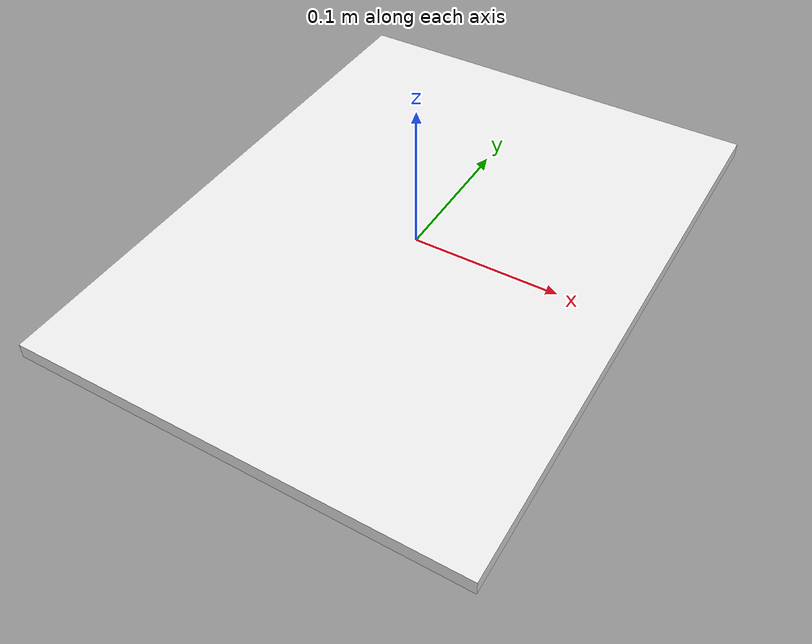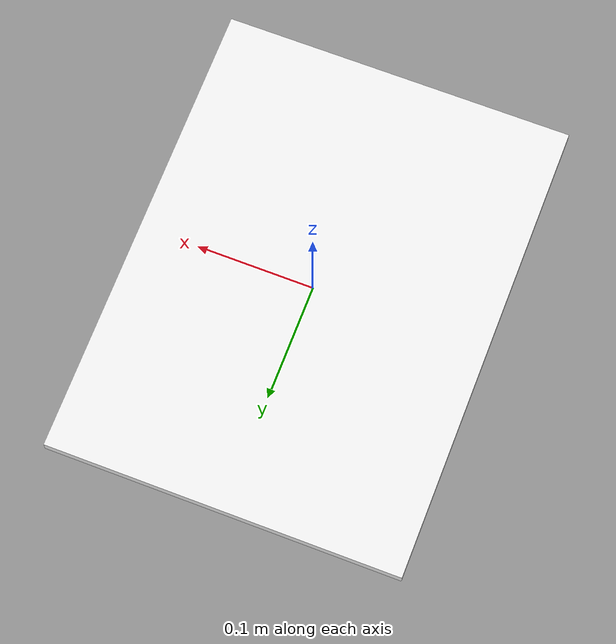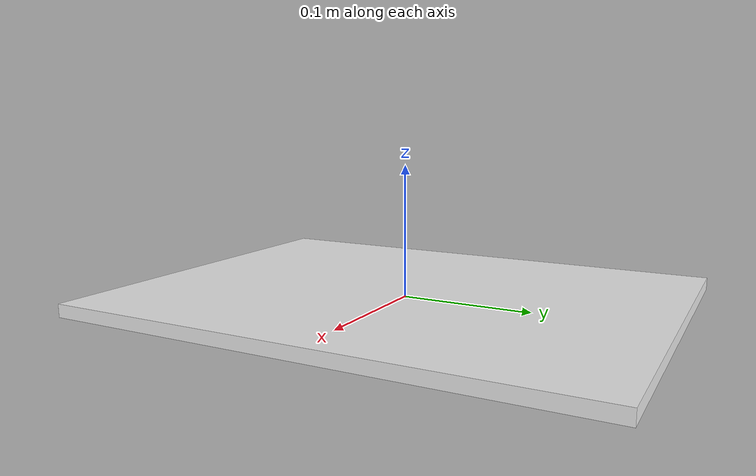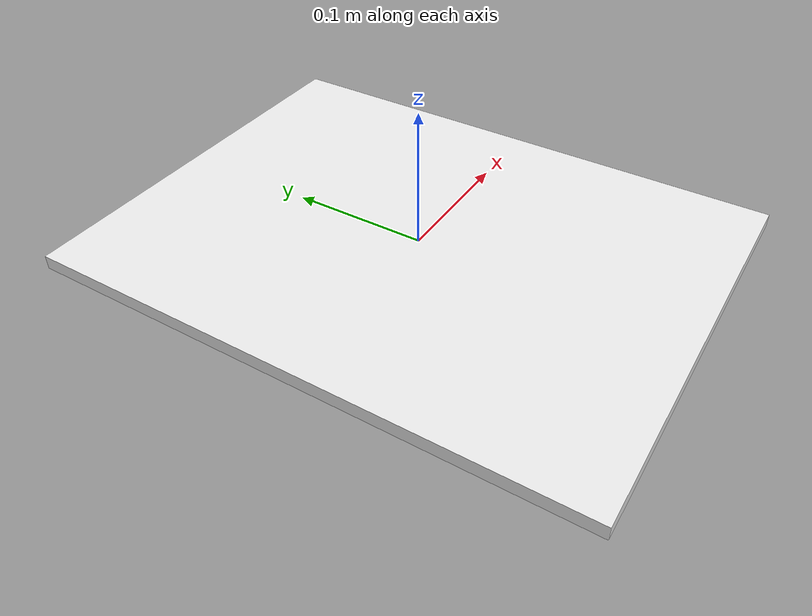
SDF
<sdf version="1.7">
  <model name="workpiece">
    <link name="link">
      <inertial>
        <mass>1</mass>
        <pose>0.5948852756056624 0.12248613019504806 0.2050087169003294 0.0 -0.0 1.7028964646179918</pose>
      </inertial>
      <visual name="visual">
        <geometry>
          <box>
<size>0.3 0.4 0.01</size>
</box>
        </geometry>
        <material>
          <script>
            <name>Gazebo/White</name>
            <uri>file://media/materials/scripts/gazebo.material</uri>
          </script>
          <shader type="pixel">
            <normal_map>__default__</normal_map>
          </shader>
        </material>
        <transparency>0</transparency>
        <cast_shadows>1</cast_shadows>
      </visual>
    </link>
    <static>1</static>
    <allow_auto_disable>1</allow_auto_disable>
  </model>
</sdf>
